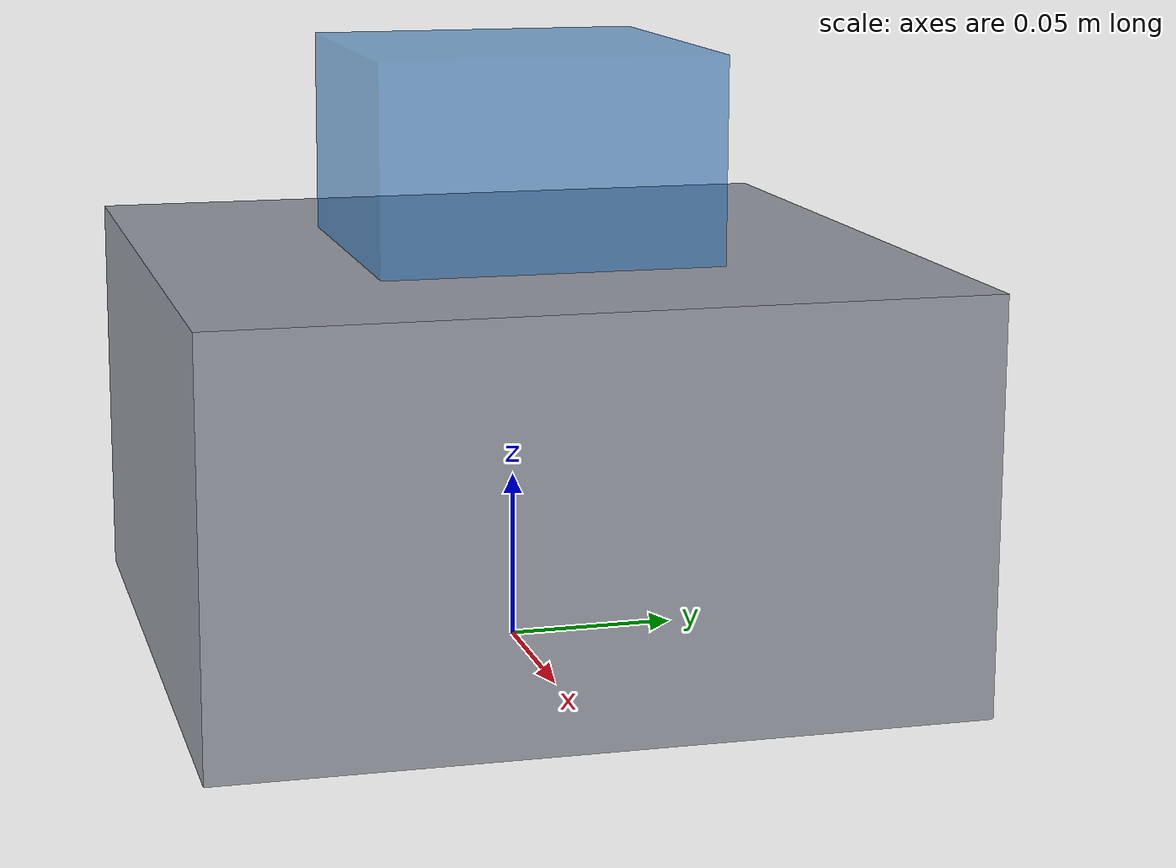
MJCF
<?xml version="1.0" encoding="utf-8"?>
<mujoco model="cell_stacking_machine">
  <compiler angle="radian" autolimits="true"/>
  <default>
    <default class="body"><geom contype="1" conaffinity="1"/></default>
  </default>
  <worldbody>
    <body name="base">
      <geom type="box" size="0.11 0.11 0.06" pos="0 0 0.06" rgba="0.6 0.62 0.65 1" class="body"/>
      <geom type="box" size="0.033 0.0055000000000000005 0.015" pos="-0.055 -0.099 0.09" rgba="0.9 0.7 0.1 1" class="body"/>
      <body name="stacking_stage" pos="0 0 0.15">
        <joint name="stacking_stage_joint" type="slide" axis="0 0 1" range="0 0.05" damping="1.0" frictionloss="0.5"/>
  <geom type="box" size="0.05 0.05 0.03" pos="0 0 0" rgba="0.2 0.5 0.8 0.6" class="body"/>
      </body>
    </body>
  </worldbody>
</mujoco>
